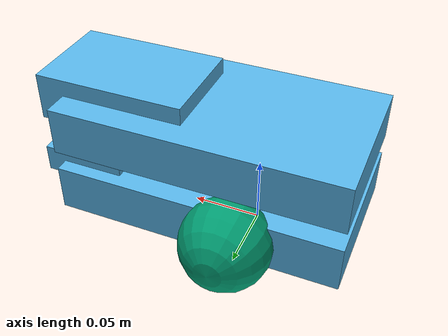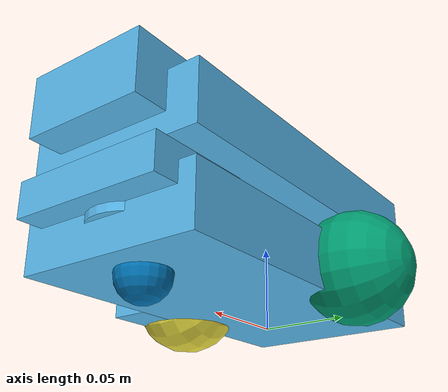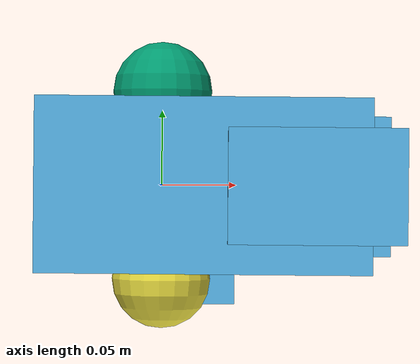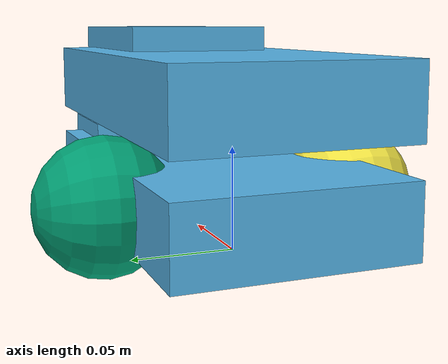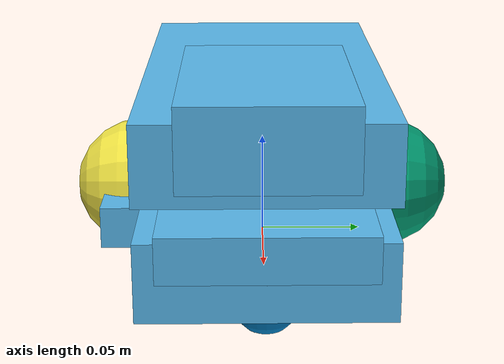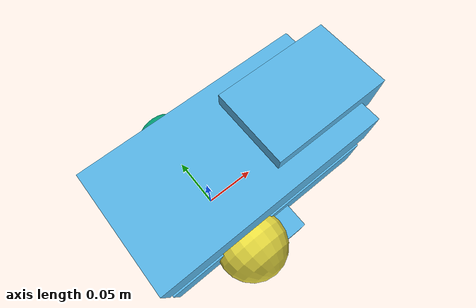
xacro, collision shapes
<?xml version="1.0" ?>
<robot xmlns:xacro="http://ros.org/wiki/xacro">

  <xacro:include filename="inertial_macros.xacro"/>

  <!-- Robot's base properties -->
  <xacro:property name="base_length" value="0.21"/>
  <xacro:property name="base_width" value="0.11"/>
  <xacro:property name="base_height" value="0.035"/>

  <!-- Robot's wheel properties -->
  <xacro:property name="wheel_radius" value="0.0325"/>
  <xacro:property name="wheel_height" value="0.025"/>
  <xacro:property name="wheel_mass" value="0.031"/>

  <!-- Distance between centre of wheel and robot base -->
  <xacro:property name="wheel_zoff" value="0.0125"/>

  <link name="base_footprint"/>

  <joint name="base_joint" type="fixed">
    <parent link="base_footprint"/>
    <child link="base_link"/>
    <origin xyz="-0.076 0 ${(wheel_radius + wheel_zoff / 2)}" rpy="0 0 0"/>
  </joint>

  <!-- Robot base chasis-->
  <link name="base_link">
      <visual>
        <origin xyz="${base_length/2} 0 ${-wheel_zoff}" rpy="0 0 0"/>
          <geometry>
              <mesh filename="package://demo_description/meshes/robot_chassis.dae" />
          </geometry>
      </visual>
      <collision>
        <origin xyz="${base_length/2} 0 ${-wheel_zoff}" rpy="0 0 0"/>
        <geometry>
          <box size="${base_length} ${base_width} ${base_height}"/>
        </geometry>
      </collision>

      <visual>
        <origin xyz="${base_length/2} 0 ${0.05-wheel_zoff}" rpy="0 0 0"/>
          <geometry>
              <mesh filename="package://demo_description/meshes/robot_chassis.dae" />
          </geometry>
      </visual>
      <collision>
        <origin xyz="${base_length/2} 0 ${0.05-wheel_zoff}" rpy="0 0 0"/>
        <geometry>
          <box size="${base_length} ${base_width} ${base_height}"/>
        </geometry>
      </collision>

    <!-- Caster mount -->
      <visual name="caster_mount_visual">
          <origin xyz="0.1915 0 -0.0475" rpy="0 0 0"/>
        <geometry>
          <mesh filename="package://demo_description/meshes/caster_mount.dae" />
        </geometry>
      </visual>
      <collision name="caster_mount_collision">
        <origin xyz="0.1915 0 -0.005" rpy="0 0 0"/>
        <geometry>
          <cylinder radius="0.023" length="0.0125"/>
        </geometry>
      </collision>

      <!-- Raspberry Pi -->
      <visual name="rpi_4_visual">
        <origin xyz="0.164 0 0.0035" rpy="0 0 ${-pi/2}"/>
        <geometry>
          <mesh filename="package://demo_description/meshes/rpi_4.dae"/>
        </geometry>
      </visual>
      <collision name="rpi_4_collision">
        <origin xyz="0.195 0 0.0035" rpy="0 0 ${-pi/2}"/>
        <geometry>
          <box size="0.09 0.06 0.02"/>
        </geometry>
      </collision>

      <!-- Power bank -->
      <visual name="power_bank_visual">
        <origin xyz="0.096 -0.031 -0.02" rpy="0 0 0"/>
        <geometry>
          <mesh filename="package://demo_description/meshes/power_bank.dae"/>
        </geometry>
      </visual>
      <collision name="power_bank_collision">
        <origin xyz="0.094 -0.031 -0.02" rpy="0 0 ${pi/2}"/>
        <geometry>
          <box size="0.094 0.062 0.02"/>
        </geometry>
      </collision>

      <!-- Rplidar base -->
      <visual name="rplidar_base_visual">
        <origin xyz="0.175 0 0.05" rpy="0 0 ${pi}"/>
          <geometry>
            <mesh filename="package://demo_description/meshes/rplidar_base.dae"/>
          </geometry>
        </visual>
      <collision name="rplidar_base_collision">
        <origin xyz="0.175 0 0.05" rpy="0 0 ${pi}"/>
        <geometry>
          <box size="0.11 0.072 0.035"/>
        </geometry>
      </collision>

    <xacro:box_inertia mass="1.864" length="${base_length}" width="${base_width}" height="${base_height}">
      <origin xyz="0.105 0 0.0175" rpy="0 0 0"/>
    </xacro:box_inertia>
  </link>

  <!-- Left Wheel -->
  <link name="left_wheel">
    <visual>
        <geometry>
          <mesh filename="package://demo_description/meshes/left_wheel.dae" />
        </geometry>
    </visual>
    <collision>
      <origin xyz="0 0 0.0065" rpy="0 0 0"/>
      <geometry>
        <sphere radius="${wheel_radius}"/>
      </geometry>
    </collision>

    <xacro:cylinder_inertia mass="${wheel_mass}" length="${wheel_height}" radius="${wheel_radius}">
      <origin xyz="0 0 0" rpy="0 0 0"/>
    </xacro:cylinder_inertia>
  </link>

  <joint name="left_wheel_joint" type="continuous">
    <parent link="base_link"/>
    <child link="left_wheel"/>
    <origin xyz="0.077 0.055 -${wheel_zoff}" rpy="${pi/2} 0 ${pi}"/>
    <axis xyz="0 0 1"/>
  </joint>

  <!-- Right Wheel -->
  <link name="right_wheel">
    <visual>
      <origin xyz="0 0 -0.009" rpy="0 0 0"/>
      <geometry>
        <mesh filename="package://demo_description/meshes/right_wheel.dae"/>
      </geometry>
    </visual>
    <collision>
      <origin xyz="0 0 -0.0065" rpy="0 0 0"/>
      <geometry>
        <sphere radius="${wheel_radius}"/>
      </geometry>
    </collision>

    <xacro:cylinder_inertia mass="${wheel_mass}" length="${wheel_height}" radius="${wheel_radius}">
      <origin xyz="0 0 0" rpy="0 0 0"/>
    </xacro:cylinder_inertia>
  </link>

  <joint name="right_wheel_joint" type="continuous">
    <parent link="base_link"/>
    <child link="right_wheel"/>
    <origin xyz="0.077 -0.055 -${wheel_zoff}" rpy="${pi/2} 0 ${-pi}"/>
    <axis xyz="0 0 1"/>
  </joint>

  <!-- Caster wheel -->
  <link name="caster_wheel">
    <visual>
      <geometry>
        <mesh filename="package://demo_description/meshes/caster_wheel.dae"/>
      </geometry>
    </visual>
    <collision>
      <origin xyz="0 0 -0.001" rpy="0 0 ${pi/2}"/>
      <geometry>
        <sphere radius="0.015"/>
      </geometry>
    </collision>

    <xacro:sphere_inertia mass="0.033" radius="0.025">
      <origin xyz="0 0 0" rpy="0 0 0"/>
    </xacro:sphere_inertia>
  </link>

  <joint name="caster_wheel_joint" type="fixed">
    <parent link="base_link"/>
    <child link="caster_wheel"/>
    <origin xyz="0.182 0 -0.031" rpy="0 0 ${-pi/2}"/>
  </joint>

  <gazebo reference="caster_wheel">
    <mu1 value="0.001"/>
    <mu2 value="0.001"/>
  </gazebo>

</robot>
